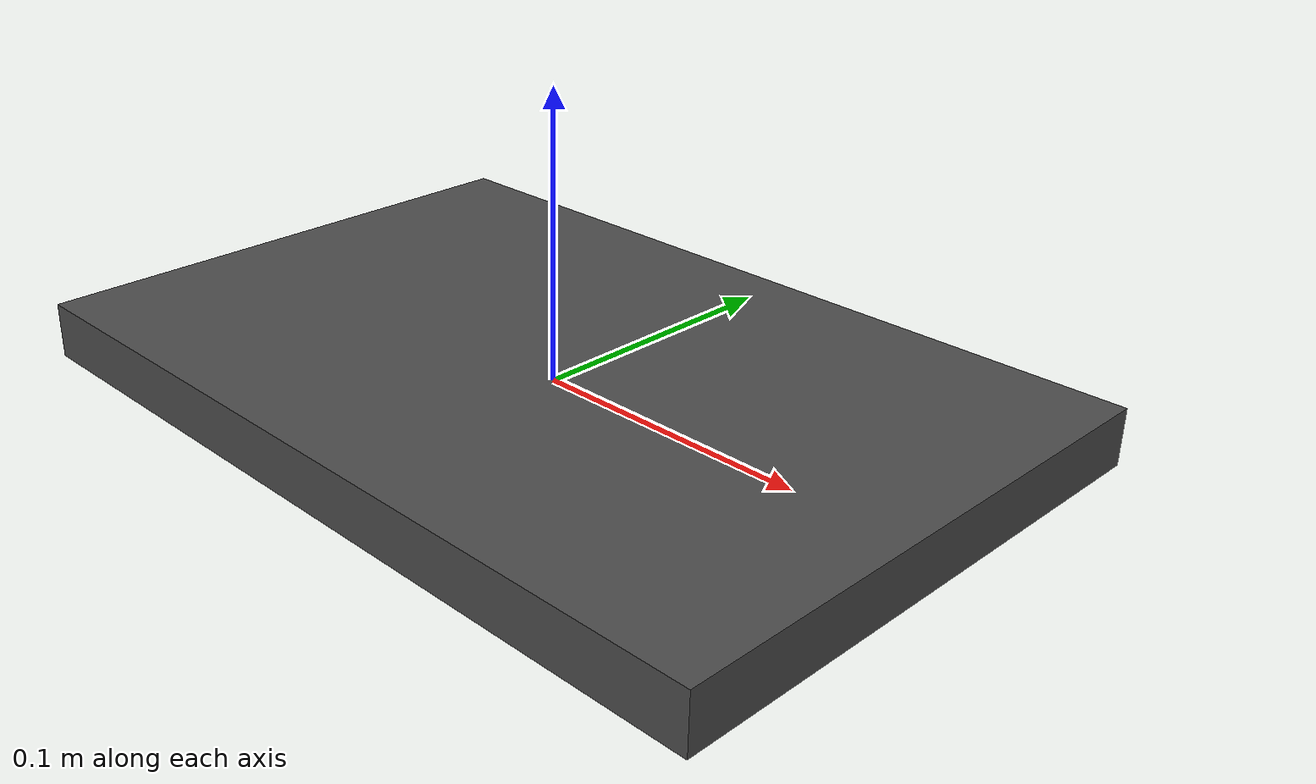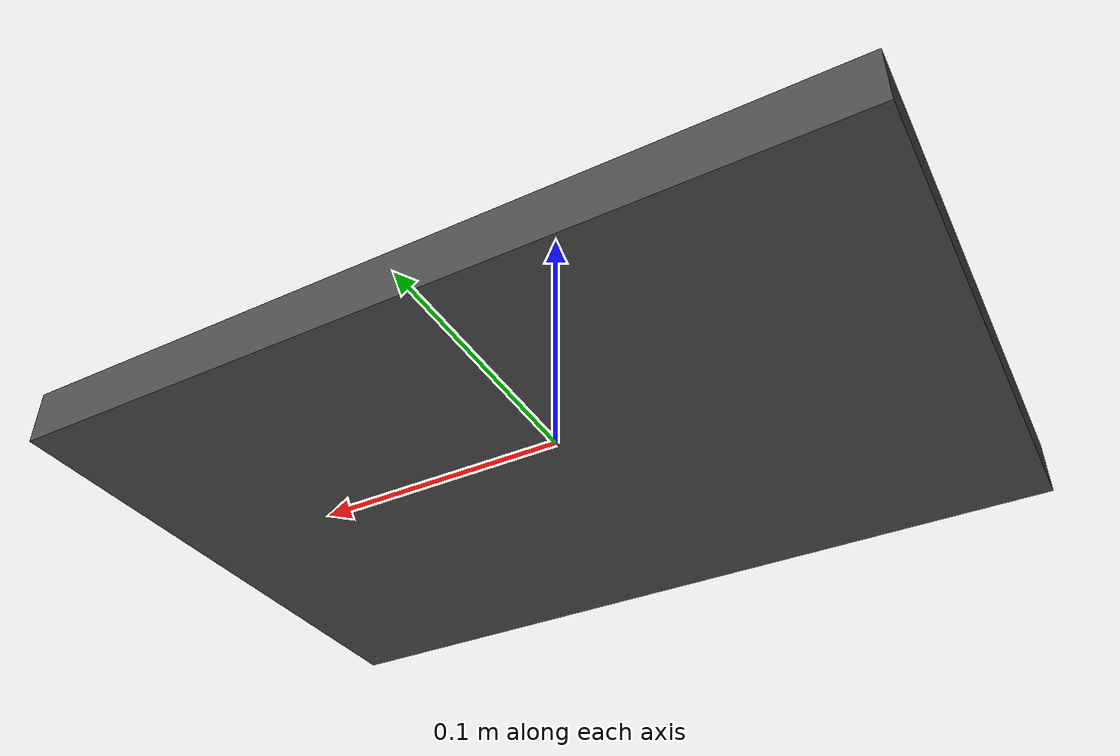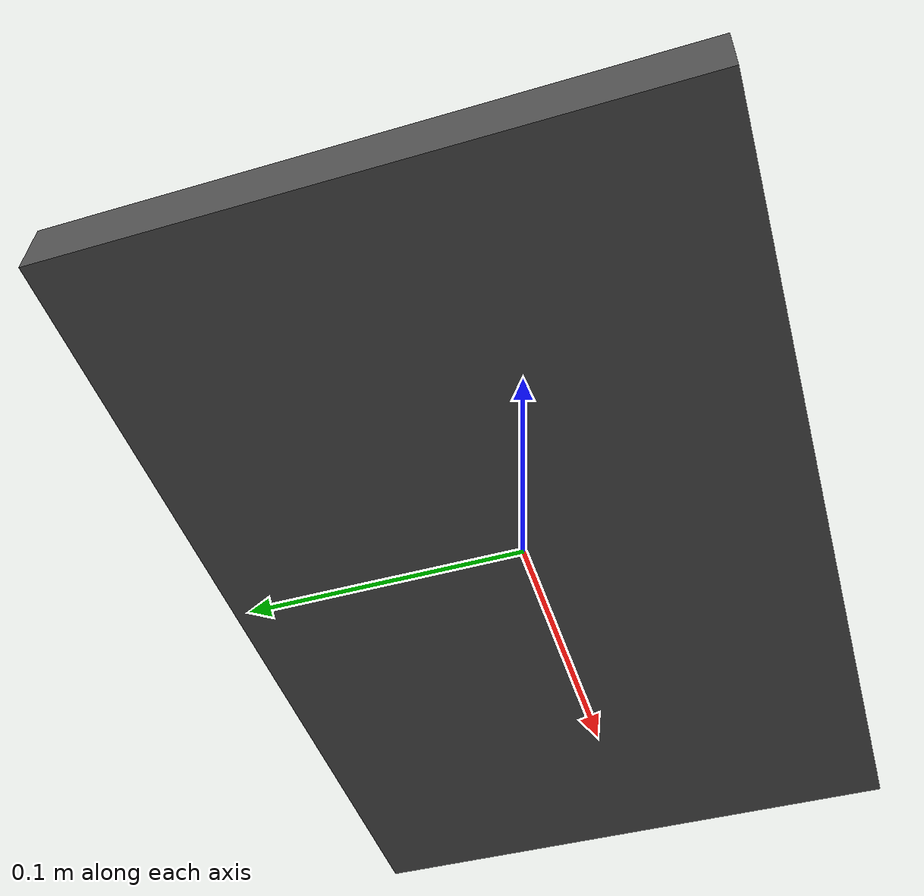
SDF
<?xml version="1.0"?>
<sdf version="1.6">
  <model name="object_laptop">
    <static>true</static>
    <link name="laptop_link">
      <visual name="laptop_visual">
        <geometry>
          <box>
            <size>0.3 0.2 0.02</size>
          </box>
        </geometry>
        <material>
          <ambient>0.3 0.3 0.3 1</ambient>
        </material>
      </visual>
    </link>
  </model>
</sdf>
